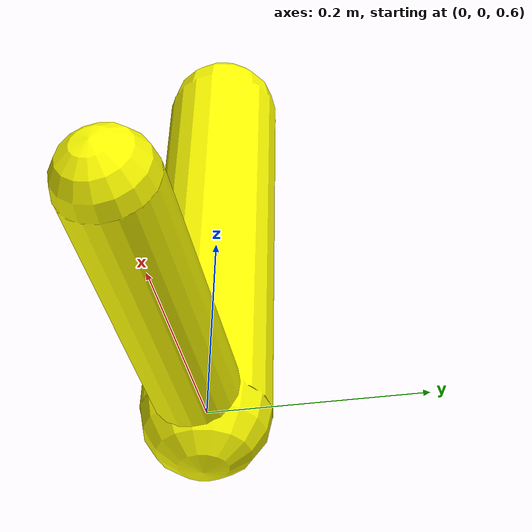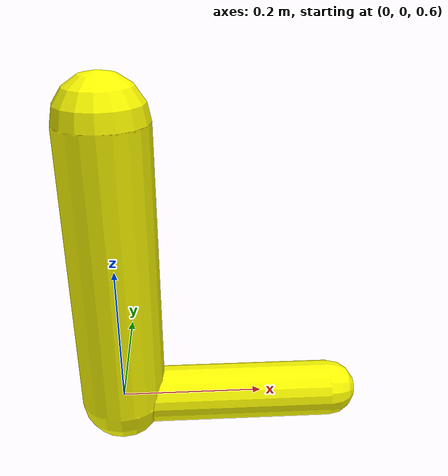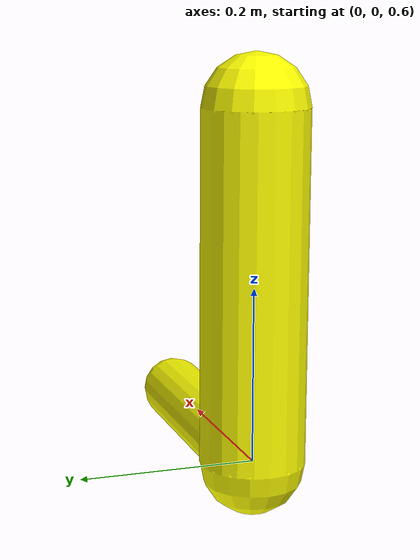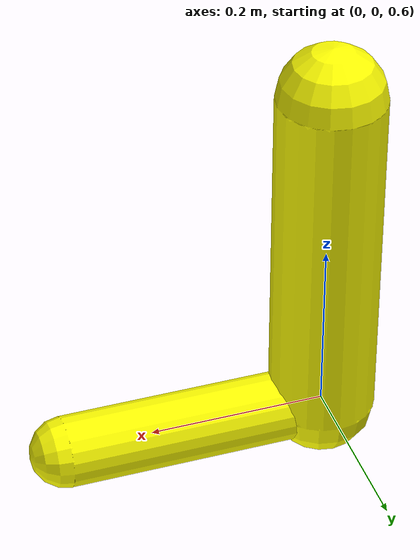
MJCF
<mujoco model="example">
	<compiler coordinate="global"/>

	<default>
		<geom rgba="1 1 0 1"/>
	</default>

	<asset>
		<texture type="skybox" builtin="gradient" rgb1="0 1 1" rgb2=".6 .2 1" width="256" height="256"/>
	</asset>

	<worldbody>
		<body>
			<geom type="capsule" fromto="0 0 1  0 0 0.6" size="0.06"/>

			<body>
				<geom type="capsule" fromto="0 0 0.6  0.3 0 0.6" size="0.04"/>
			</body>
		</body>

	</worldbody>
</mujoco>
